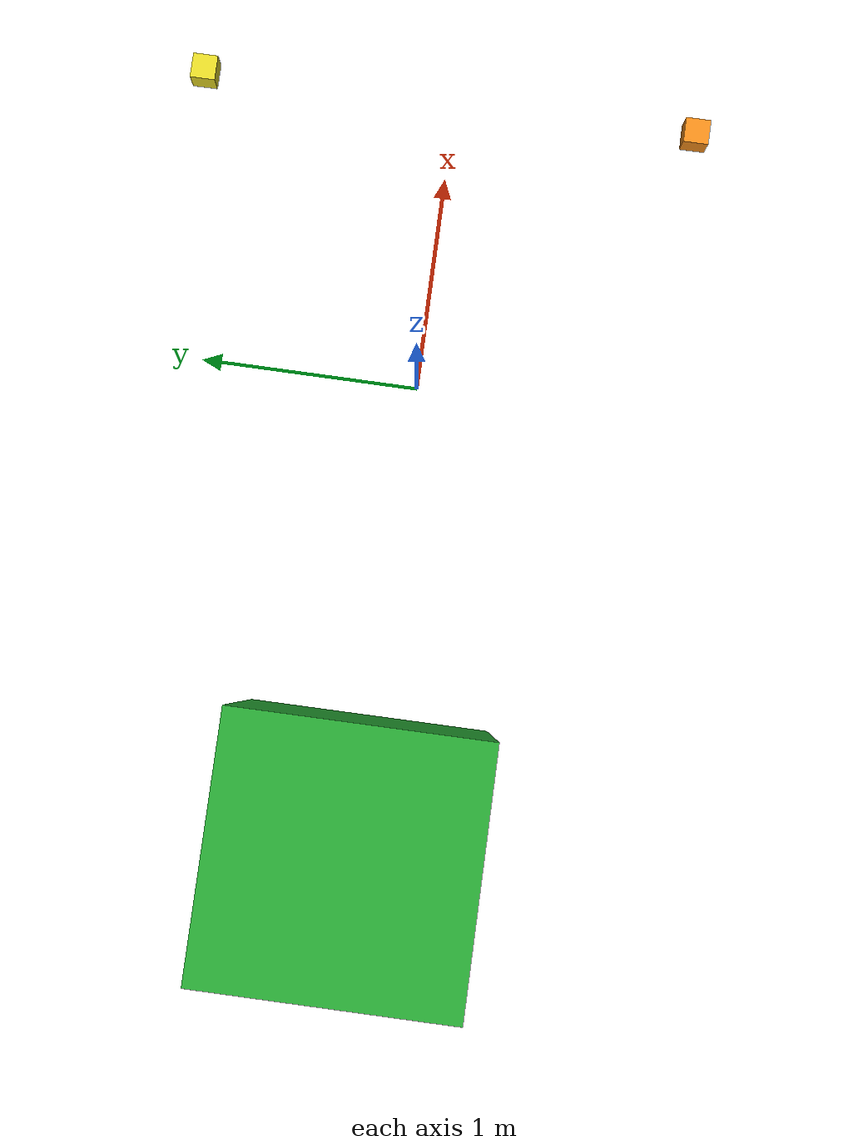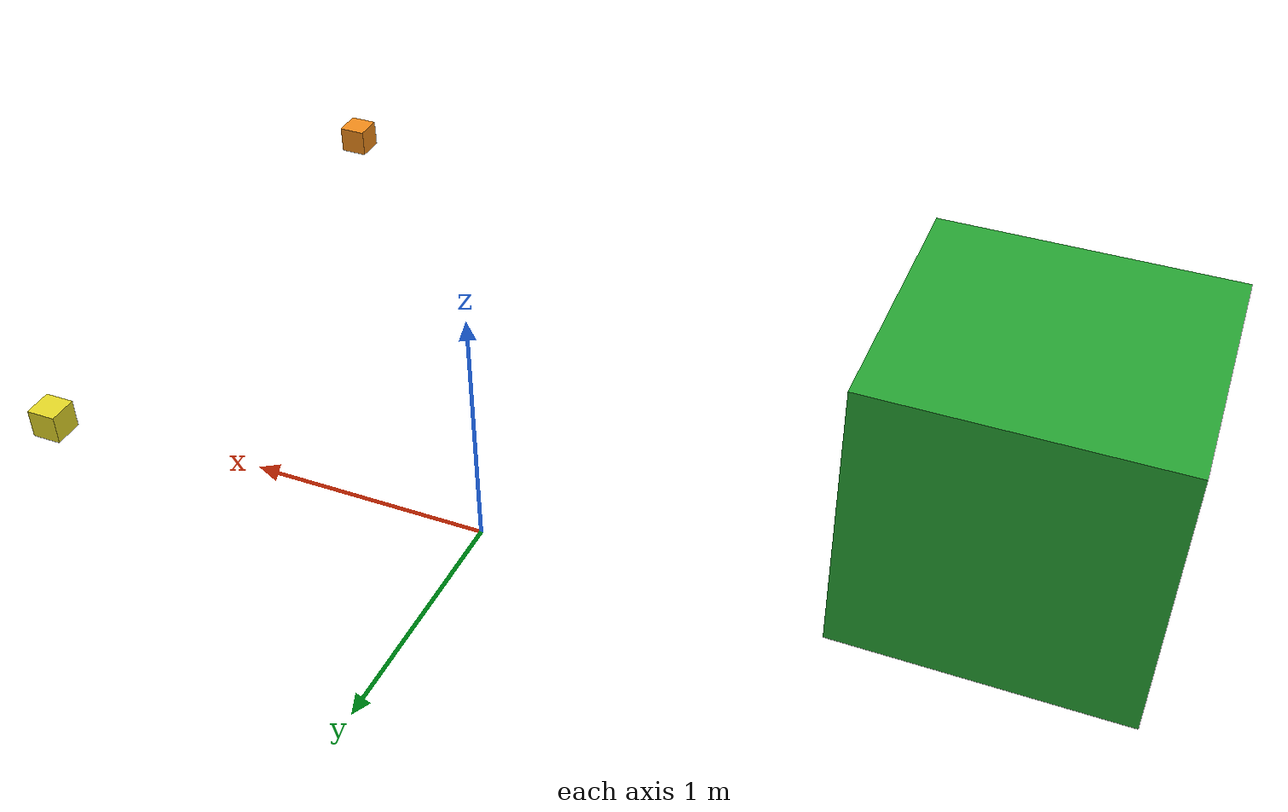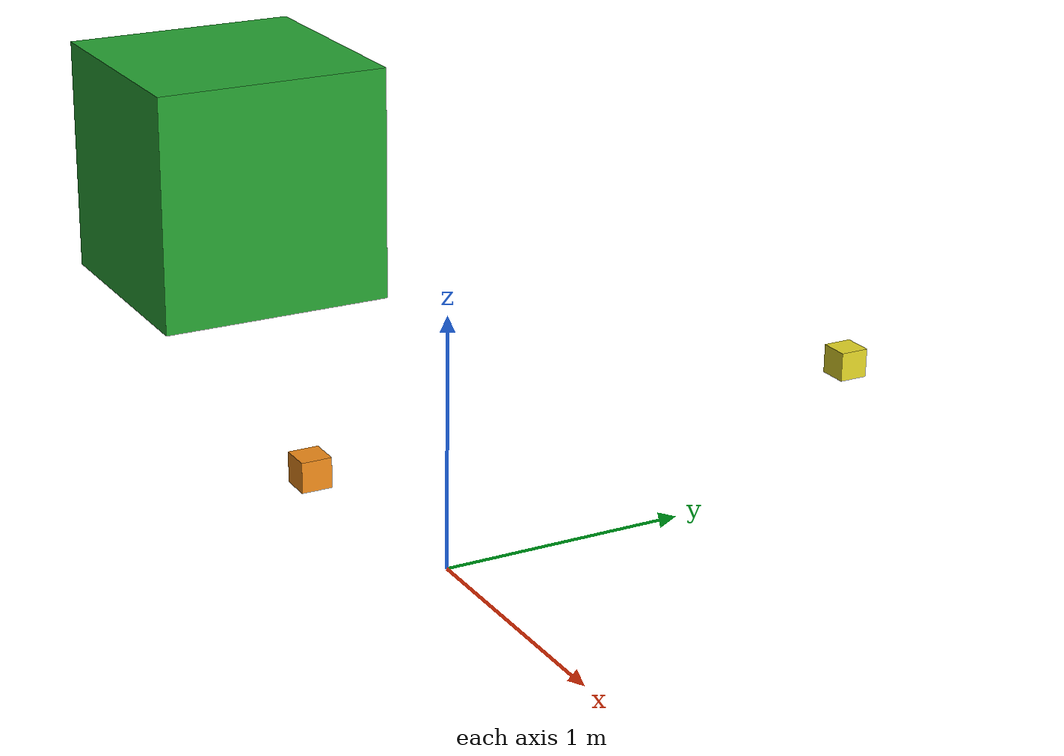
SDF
<?xml version="1.0" ?>
<!--
  Copyright (C) 2020  Rhys Mainwaring
-->
<sdf version="1.6">
  <world name="ocean_camera_world">

    <!-- GUI -->
    <gui>
      <plugin name="keyboard_gui_plugin" filename="libKeyboardGUIPlugin.so"/>
      <camera name='user_camera'>
        <pose>3.54828 -0.043117 1.49579 0 0.163643 3.13619</pose>
        <view_controller>orbit</view_controller>
        <projection_type>perspective</projection_type>
      </camera>
    </gui>

    <!-- Scene -->
    <scene>
      <sky>
        <time>10</time>
        <sunrise>6</sunrise>
        <sunset>18</sunset>
        <clouds>
          <speed>12</speed>
          <direction>1.57079</direction>
        </clouds>
      </sky>
      <grid>false</grid>
      <origin_visual>false</origin_visual>
    </scene>

    <!-- Lights -->
    <include>
      <uri>model://sun</uri>
    </include>

    <!-- World models  -->
    <include>
      <uri>model://ocean</uri>
    </include>

    <model name="logical_camera_post">
      <static>true</static>
      <pose>1 1 1 0 0 3.14159</pose>
      <link name="link">
        <collision name="collision">
          <geometry>
            <box>
              <size>0.1 0.1 0.1</size>
            </box>
          </geometry>
        </collision>
        <visual name="visual">
          <geometry>
            <box>
              <size>0.1 0.1 0.1</size>
            </box>
          </geometry>
          <material>
            <script>
              <uri>__default__</uri>
              <name>Gazebo/Yellow</name>
            </script>
          </material>
        </visual>
        <sensor name="logical_camera" type="logical_camera">
          <logical_camera>
            <near>0.1</near>
            <far>10</far>
            <horizontal_fov>1.05</horizontal_fov>
            <aspect_ratio>1.8</aspect_ratio>
          </logical_camera>
          <visualize>1</visualize>
          <always_on>1</always_on>
          <update_rate>30</update_rate>
        </sensor>
      </link>
    </model>

    <model name="camera_post">
      <static>true</static>
      <pose>1 -1 1 0 0 3.14159</pose>
      <link name="link">
        <collision name="collision">
          <geometry>
            <box>
              <size>0.1 0.1 0.1</size>
            </box>
          </geometry>
        </collision>
        <visual name="visual">
          <geometry>
            <box>
              <size>0.1 0.1 0.1</size>
            </box>
          </geometry>
          <material>
            <script>
              <uri>__default__</uri>
              <name>Gazebo/Orange</name>
            </script>
          </material>
        </visual>
        <sensor name="camera" type="camera">
          <camera>
            <horizontal_fov>1.047</horizontal_fov>
            <image>
              <width>320</width>
              <height>240</height>
            </image>
            <clip>
              <near>0.1</near>
              <far>100</far>
            </clip>
          </camera>
          <visualize>1</visualize>
          <always_on>1</always_on>
          <update_rate>30</update_rate>
        </sensor>
      </link>
    </model>

    <model name="target_box">
      <static>true</static>
      <pose>-2 0 1 0 0 0</pose>
      <link name="link">
        <collision name="collision">
          <geometry>
            <box>
              <size>1 1 1</size>
            </box>
          </geometry>
        </collision>
        <visual name="visual">
          <geometry>
            <box>
              <size>1 1 1</size>
            </box>
          </geometry>
          <material>
            <script>
              <uri>__default__</uri>
              <name>Gazebo/Green</name>
            </script>
          </material>
        </visual>
      </link>
    </model>
  </world>
</sdf>

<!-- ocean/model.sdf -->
<sdf version="1.6">
  <model name="ocean">
    <static>true</static>
    <plugin name="wavefield_plugin" filename="libWavefieldModelPlugin.so">
      <static>false</static>
      <update_rate>30</update_rate>
      <size>1000 1000</size>
      <cell_count>50 50</cell_count>
      <wave>
        <number>3</number>
        <scale>2.5</scale>
        <angle>0.3</angle>
        <steepness>1.0</steepness>
        <amplitude>1.0</amplitude>
        <period>8.0</period>
        <direction>1 1</direction>
      </wave>
      <markers>
        <wave_patch>false</wave_patch>
        <wave_patch_size>4 4</wave_patch_size>
      </markers>
    </plugin>

    <link name="ocean_link">
      <visual name="ocean_visual">
        <plugin name="ocean_plugin" filename="libOceanVisualPlugin.so" />
        <geometry>
          <empty />
        </geometry>
        <material>
          <script>
            <uri>model://ocean/materials/scripts/water.material</uri>
            <name>Water/Water</name>
          </script>
        </material>
      </visual>
    </link>
  </model>
</sdf>
